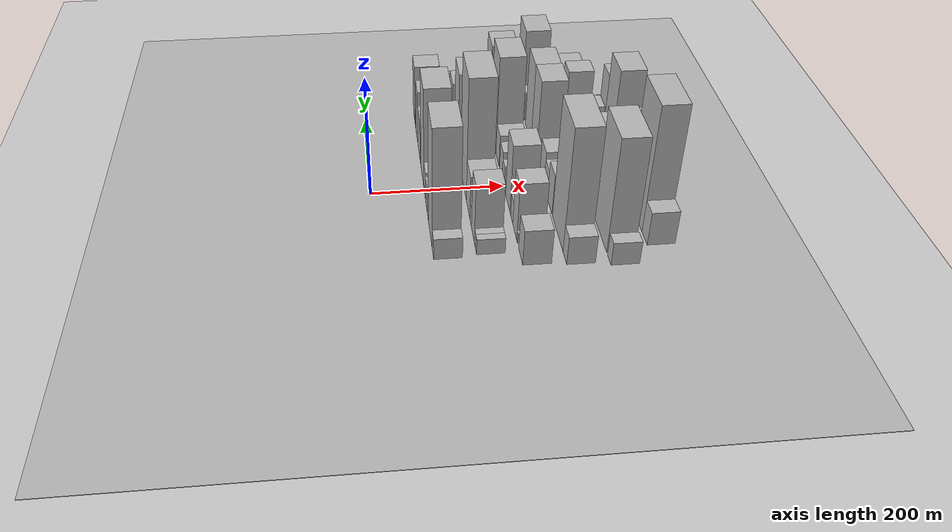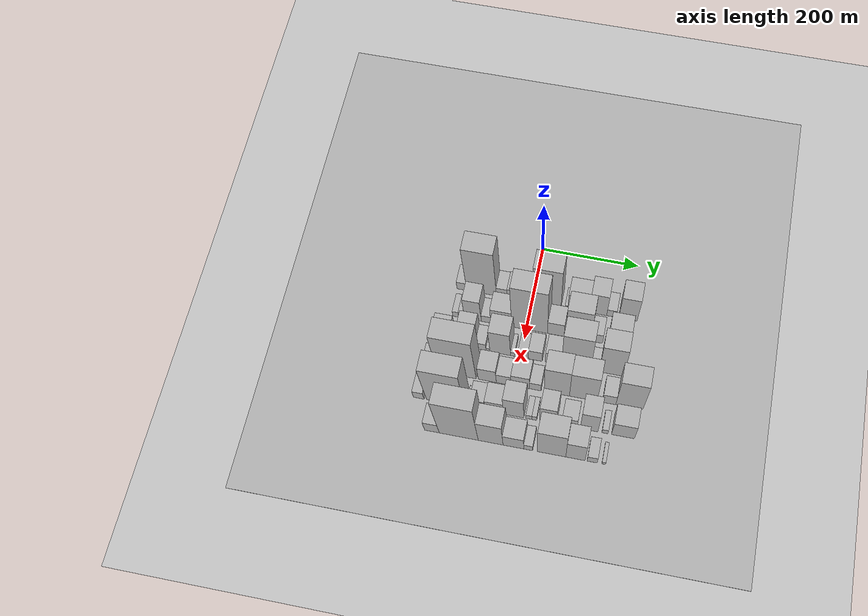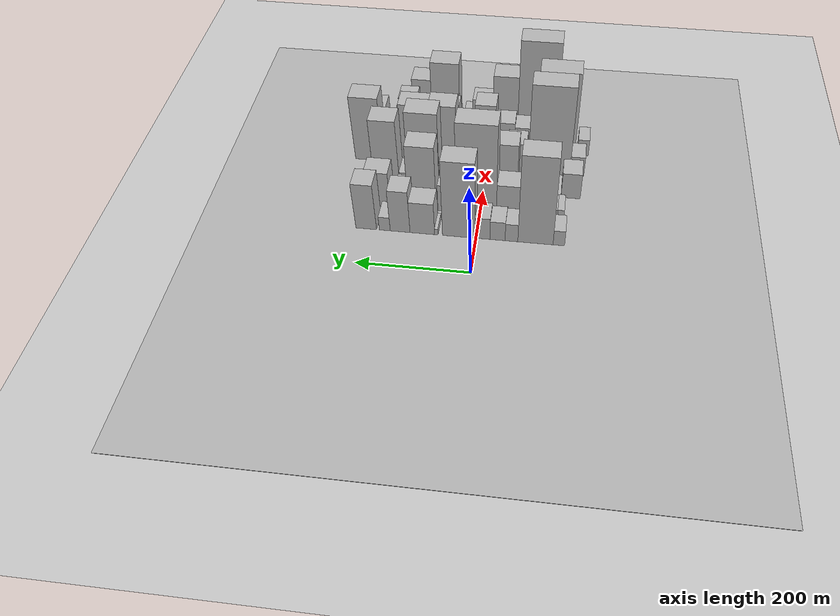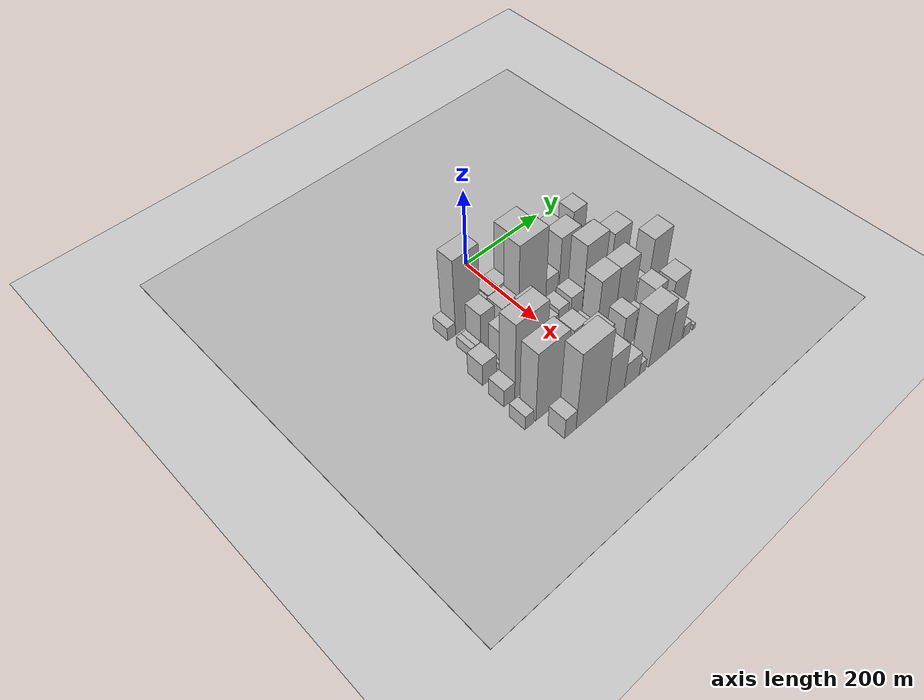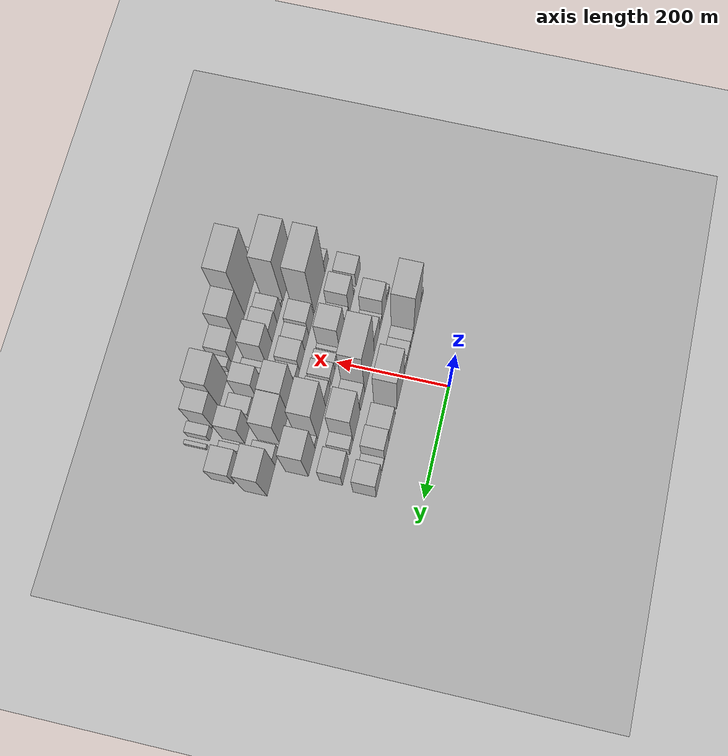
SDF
<sdf version="1.6">
 <world name="default">
  <include><name>ground_plane_1</name><uri>model://HANNAS_ground_plane</uri></include>
  <include>
   <name>ground_plane_2</name>
   <uri>model://HANNAS_ground_plane</uri>
   <pose>100 0 0  0 0 0</pose>
  </include>
  <model name="building_23">
   <static>1</static>
   <pose>100.0000 -146.3929 0 0.000000 0.000000 0.000000</pose>
   <link name="link">
    <pose>0 0 18.00 0 0 0</pose>
    <collision name="collision"><geometry><box><size>40.0000 20.2436 36.0000</size></box></geometry></collision>
    <visual name="visual">
     <cast_shadows>0</cast_shadows>
     <geometry><box><size>40.0000 20.2436 36.0000</size></box></geometry>
     <material>
      <script>
       <uri>model://HANNAS_wall/materials/scripts</uri>
       <uri>model://HANNAS_wall/materials/textures</uri>
       <name>vrc/HANNAS_wall</name>
      </script>
     </material>
    </visual>
   </link>
  </model>
  <model name="building_24">
   <static>1</static>
   <pose>100.0000 -105.3213 0 0.000000 0.000000 0.000000</pose>
   <link name="link">
    <pose>0 0 102.00 0 0 0</pose>
    <collision name="collision"><geometry><box><size>40.0000 61.8996 204.0000</size></box></geometry></collision>
    <visual name="visual">
     <cast_shadows>0</cast_shadows>
     <geometry><box><size>40.0000 61.8996 204.0000</size></box></geometry>
     <material>
      <script>
       <uri>model://HANNAS_wall/materials/scripts</uri>
       <uri>model://HANNAS_wall/materials/textures</uri>
       <name>vrc/HANNAS_wall</name>
      </script>
     </material>
    </visual>
   </link>
  </model>
  <model name="building_25">
   <static>1</static>
   <pose>100.0000 -63.1519 0 0.000000 0.000000 0.000000</pose>
   <link name="link">
    <pose>0 0 21.00 0 0 0</pose>
    <collision name="collision"><geometry><box><size>40.0000 22.4393 42.0000</size></box></geometry></collision>
    <visual name="visual">
     <cast_shadows>0</cast_shadows>
     <geometry><box><size>40.0000 22.4393 42.0000</size></box></geometry>
     <material>
      <script>
       <uri>model://HANNAS_wall/materials/scripts</uri>
       <uri>model://HANNAS_wall/materials/textures</uri>
       <name>vrc/HANNAS_wall</name>
      </script>
     </material>
    </visual>
   </link>
  </model>
  <model name="building_26">
   <static>1</static>
   <pose>100.0000 -38.5677 0 0.000000 0.000000 0.000000</pose>
   <link name="link">
    <pose>0 0 22.50 0 0 0</pose>
    <collision name="collision"><geometry><box><size>40.0000 26.7291 45.0000</size></box></geometry></collision>
    <visual name="visual">
     <cast_shadows>0</cast_shadows>
     <geometry><box><size>40.0000 26.7291 45.0000</size></box></geometry>
     <material>
      <script>
       <uri>model://HANNAS_wall/materials/scripts</uri>
       <uri>model://HANNAS_wall/materials/textures</uri>
       <name>vrc/HANNAS_wall</name>
      </script>
     </material>
    </visual>
   </link>
  </model>
  <model name="building_27">
   <static>1</static>
   <pose>100.0000 -11.8745 0 0.000000 0.000000 0.000000</pose>
   <link name="link">
    <pose>0 0 25.50 0 0 0</pose>
    <collision name="collision"><geometry><box><size>40.0000 26.6573 51.0000</size></box></geometry></collision>
    <visual name="visual">
     <cast_shadows>0</cast_shadows>
     <geometry><box><size>40.0000 26.6573 51.0000</size></box></geometry>
     <material>
      <script>
       <uri>model://HANNAS_wall/materials/scripts</uri>
       <uri>model://HANNAS_wall/materials/textures</uri>
       <name>vrc/HANNAS_wall</name>
      </script>
     </material>
    </visual>
   </link>
  </model>
  <model name="building_28">
   <static>1</static>
   <pose>100.0000 30.4601 0 0.000000 0.000000 0.000000</pose>
   <link name="link">
    <pose>0 0 88.50 0 0 0</pose>
    <collision name="collision"><geometry><box><size>40.0000 58.0119 177.0000</size></box></geometry></collision>
    <visual name="visual">
     <cast_shadows>0</cast_shadows>
     <geometry><box><size>40.0000 58.0119 177.0000</size></box></geometry>
     <material>
      <script>
       <uri>model://HANNAS_wall/materials/scripts</uri>
       <uri>model://HANNAS_wall/materials/textures</uri>
       <name>vrc/HANNAS_wall</name>
      </script>
     </material>
    </visual>
   </link>
  </model>
  <model name="building_29">
   <static>1</static>
   <pose>100.0000 70.5219 0 0.000000 0.000000 0.000000</pose>
   <link name="link">
    <pose>0 0 7.50 0 0 0</pose>
    <collision name="collision"><geometry><box><size>40.0000 6.1116 15.0000</size></box></geometry></collision>
    <visual name="visual">
     <cast_shadows>0</cast_shadows>
     <geometry><box><size>40.0000 6.1116 15.0000</size></box></geometry>
     <material>
      <script>
       <uri>model://HANNAS_wall/materials/scripts</uri>
       <uri>model://HANNAS_wall/materials/textures</uri>
       <name>vrc/HANNAS_wall</name>
      </script>
     </material>
    </visual>
   </link>
  </model>
  <model name="building_30">
   <static>1</static>
   <pose>100.0000 95.6432 0 0.000000 0.000000 0.000000</pose>
   <link name="link">
    <pose>0 0 37.50 0 0 0</pose>
    <collision name="collision"><geometry><box><size>40.0000 44.1311 75.0000</size></box></geometry></collision>
    <visual name="visual">
     <cast_shadows>0</cast_shadows>
     <geometry><box><size>40.0000 44.1311 75.0000</size></box></geometry>
     <material>
      <script>
       <uri>model://HANNAS_wall/materials/scripts</uri>
       <uri>model://HANNAS_wall/materials/textures</uri>
       <name>vrc/HANNAS_wall</name>
      </script>
     </material>
    </visual>
   </link>
  </model>
  <model name="building_31">
   <static>1</static>
   <pose>100.0000 135.5213 0 0.000000 0.000000 0.000000</pose>
   <link name="link">
    <pose>0 0 49.50 0 0 0</pose>
    <collision name="collision"><geometry><box><size>40.0000 35.6252 99.0000</size></box></geometry></collision>
    <visual name="visual">
     <cast_shadows>0</cast_shadows>
     <geometry><box><size>40.0000 35.6252 99.0000</size></box></geometry>
     <material>
      <script>
       <uri>model://HANNAS_wall/materials/scripts</uri>
       <uri>model://HANNAS_wall/materials/textures</uri>
       <name>vrc/HANNAS_wall</name>
      </script>
     </material>
    </visual>
   </link>
  </model>
  <model name="building_32">
   <static>1</static>
   <pose>100.0000 163.1861 0 0.000000 0.000000 0.000000</pose>
   <link name="link">
    <pose>0 0 16.50 0 0 0</pose>
    <collision name="collision"><geometry><box><size>40.0000 19.7042 33.0000</size></box></geometry></collision>
    <visual name="visual">
     <cast_shadows>0</cast_shadows>
     <geometry><box><size>40.0000 19.7042 33.0000</size></box></geometry>
     <material>
      <script>
       <uri>model://HANNAS_wall/materials/scripts</uri>
       <uri>model://HANNAS_wall/materials/textures</uri>
       <name>vrc/HANNAS_wall</name>
      </script>
     </material>
    </visual>
   </link>
  </model>
  <model name="building_33">
   <static>1</static>
   <pose>100.0000 196.7859 0 0.000000 0.000000 0.000000</pose>
   <link name="link">
    <pose>0 0 54.00 0 0 0</pose>
    <collision name="collision"><geometry><box><size>40.0000 37.4955 108.0000</size></box></geometry></collision>
    <visual name="visual">
     <cast_shadows>0</cast_shadows>
     <geometry><box><size>40.0000 37.4955 108.0000</size></box></geometry>
     <material>
      <script>
       <uri>model://HANNAS_wall/materials/scripts</uri>
       <uri>model://HANNAS_wall/materials/textures</uri>
       <name>vrc/HANNAS_wall</name>
      </script>
     </material>
    </visual>
   </link>
  </model>
  <model name="building_84">
   <static>1</static>
   <pose>160.0000 -146.0745 0 0.000000 0.000000 0.000000</pose>
   <link name="link">
    <pose>0 0 13.50 0 0 0</pose>
    <collision name="collision"><geometry><box><size>40.0000 11.9867 27.0000</size></box></geometry></collision>
    <visual name="visual">
     <cast_shadows>0</cast_shadows>
     <geometry><box><size>40.0000 11.9867 27.0000</size></box></geometry>
     <material>
      <script>
       <uri>model://HANNAS_wall/materials/scripts</uri>
       <uri>model://HANNAS_wall/materials/textures</uri>
       <name>vrc/HANNAS_wall</name>
      </script>
     </material>
    </visual>
   </link>
  </model>
  <model name="building_85">
   <static>1</static>
   <pose>160.0000 -133.7867 0 0.000000 0.000000 0.000000</pose>
   <link name="link">
    <pose>0 0 13.50 0 0 0</pose>
    <collision name="collision"><geometry><box><size>40.0000 12.5890 27.0000</size></box></geometry></collision>
    <visual name="visual">
     <cast_shadows>0</cast_shadows>
     <geometry><box><size>40.0000 12.5890 27.0000</size></box></geometry>
     <material>
      <script>
       <uri>model://HANNAS_wall/materials/scripts</uri>
       <uri>model://HANNAS_wall/materials/textures</uri>
       <name>vrc/HANNAS_wall</name>
      </script>
     </material>
    </visual>
   </link>
  </model>
  <model name="building_86">
   <static>1</static>
   <pose>160.0000 -110.2321 0 0.000000 0.000000 0.000000</pose>
   <link name="link">
    <pose>0 0 51.00 0 0 0</pose>
    <collision name="collision"><geometry><box><size>40.0000 34.5200 102.0000</size></box></geometry></collision>
    <visual name="visual">
     <cast_shadows>0</cast_shadows>
     <geometry><box><size>40.0000 34.5200 102.0000</size></box></geometry>
     <material>
      <script>
       <uri>model://HANNAS_wall/materials/scripts</uri>
       <uri>model://HANNAS_wall/materials/textures</uri>
       <name>vrc/HANNAS_wall</name>
      </script>
     </material>
    </visual>
   </link>
  </model>
  <model name="building_87">
   <static>1</static>
   <pose>160.0000 -83.2135 0 0.000000 0.000000 0.000000</pose>
   <link name="link">
    <pose>0 0 16.50 0 0 0</pose>
    <collision name="collision"><geometry><box><size>40.0000 19.5172 33.0000</size></box></geometry></collision>
    <visual name="visual">
     <cast_shadows>0</cast_shadows>
     <geometry><box><size>40.0000 19.5172 33.0000</size></box></geometry>
     <material>
      <script>
       <uri>model://HANNAS_wall/materials/scripts</uri>
       <uri>model://HANNAS_wall/materials/textures</uri>
       <name>vrc/HANNAS_wall</name>
      </script>
     </material>
    </visual>
   </link>
  </model>
  <model name="building_88">
   <static>1</static>
   <pose>160.0000 -51.9760 0 0.000000 0.000000 0.000000</pose>
   <link name="link">
    <pose>0 0 37.50 0 0 0</pose>
    <collision name="collision"><geometry><box><size>40.0000 42.9578 75.0000</size></box></geometry></collision>
    <visual name="visual">
     <cast_shadows>0</cast_shadows>
     <geometry><box><size>40.0000 42.9578 75.0000</size></box></geometry>
     <material>
      <script>
       <uri>model://HANNAS_wall/materials/scripts</uri>
       <uri>model://HANNAS_wall/materials/textures</uri>
       <name>vrc/HANNAS_wall</name>
      </script>
     </material>
    </visual>
   </link>
  </model>
  <model name="building_89">
   <static>1</static>
   <pose>160.0000 6.0906 0 0.000000 0.000000 0.000000</pose>
   <link name="link">
    <pose>0 0 105.00 0 0 0</pose>
    <collision name="collision"><geometry><box><size>40.0000 73.1754 210.0000</size></box></geometry></collision>
    <visual name="visual">
     <cast_shadows>0</cast_shadows>
     <geometry><box><size>40.0000 73.1754 210.0000</size></box></geometry>
     <material>
      <script>
       <uri>model://HANNAS_wall/materials/scripts</uri>
       <uri>model://HANNAS_wall/materials/textures</uri>
       <name>vrc/HANNAS_wall</name>
      </script>
     </material>
    </visual>
   </link>
  </model>
  <model name="building_90">
   <static>1</static>
   <pose>160.0000 59.5965 0 0.000000 0.000000 0.000000</pose>
   <link name="link">
    <pose>0 0 31.50 0 0 0</pose>
    <collision name="collision"><geometry><box><size>40.0000 33.8365 63.0000</size></box></geometry></collision>
    <visual name="visual">
     <cast_shadows>0</cast_shadows>
     <geometry><box><size>40.0000 33.8365 63.0000</size></box></geometry>
     <material>
      <script>
       <uri>model://HANNAS_wall/materials/scripts</uri>
       <uri>model://HANNAS_wall/materials/textures</uri>
       <name>vrc/HANNAS_wall</name>
      </script>
     </material>
    </visual>
   </link>
  </model>
  <model name="building_91">
   <static>1</static>
   <pose>160.0000 105.3599 0 0.000000 0.000000 0.000000</pose>
   <link name="link">
    <pose>0 0 75.00 0 0 0</pose>
    <collision name="collision"><geometry><box><size>40.0000 51.6903 150.0000</size></box></geometry></collision>
    <visual name="visual">
     <cast_shadows>0</cast_shadows>
     <geometry><box><size>40.0000 51.6903 150.0000</size></box></geometry>
     <material>
      <script>
       <uri>model://HANNAS_wall/materials/scripts</uri>
       <uri>model://HANNAS_wall/materials/textures</uri>
       <name>vrc/HANNAS_wall</name>
      </script>
     </material>
    </visual>
   </link>
  </model>
  <model name="building_92">
   <static>1</static>
   <pose>160.0000 142.9962 0 0.000000 0.000000 0.000000</pose>
   <link name="link">
    <pose>0 0 22.50 0 0 0</pose>
    <collision name="collision"><geometry><box><size>40.0000 23.5823 45.0000</size></box></geometry></collision>
    <visual name="visual">
     <cast_shadows>0</cast_shadows>
     <geometry><box><size>40.0000 23.5823 45.0000</size></box></geometry>
     <material>
      <script>
       <uri>model://HANNAS_wall/materials/scripts</uri>
       <uri>model://HANNAS_wall/materials/textures</uri>
       <name>vrc/HANNAS_wall</name>
      </script>
     </material>
    </visual>
   </link>
  </model>
  <model name="building_93">
   <static>1</static>
   <pose>160.0000 186.6485 0 0.000000 0.000000 0.000000</pose>
   <link name="link">
    <pose>0 0 40.50 0 0 0</pose>
    <collision name="collision"><geometry><box><size>40.0000 43.7223 81.0000</size></box></geometry></collision>
    <visual name="visual">
     <cast_shadows>0</cast_shadows>
     <geometry><box><size>40.0000 43.7223 81.0000</size></box></geometry>
     <material>
      <script>
       <uri>model://HANNAS_wall/materials/scripts</uri>
       <uri>model://HANNAS_wall/materials/textures</uri>
       <name>vrc/HANNAS_wall</name>
      </script>
     </material>
    </visual>
   </link>
  </model>
  <model name="building_137">
   <static>1</static>
   <pose>220.0000 -161.7217 0 0.000000 0.000000 0.000000</pose>
   <link name="link">
    <pose>0 0 30.00 0 0 0</pose>
    <collision name="collision"><geometry><box><size>40.0000 35.3043 60.0000</size></box></geometry></collision>
    <visual name="visual">
     <cast_shadows>0</cast_shadows>
     <geometry><box><size>40.0000 35.3043 60.0000</size></box></geometry>
     <material>
      <script>
       <uri>model://HANNAS_wall/materials/scripts</uri>
       <uri>model://HANNAS_wall/materials/textures</uri>
       <name>vrc/HANNAS_wall</name>
      </script>
     </material>
    </visual>
   </link>
  </model>
  <model name="building_138">
   <static>1</static>
   <pose>220.0000 -130.4508 0 0.000000 0.000000 0.000000</pose>
   <link name="link">
    <pose>0 0 9.00 0 0 0</pose>
    <collision name="collision"><geometry><box><size>40.0000 7.2374 18.0000</size></box></geometry></collision>
    <visual name="visual">
     <cast_shadows>0</cast_shadows>
     <geometry><box><size>40.0000 7.2374 18.0000</size></box></geometry>
     <material>
      <script>
       <uri>model://HANNAS_wall/materials/scripts</uri>
       <uri>model://HANNAS_wall/materials/textures</uri>
       <name>vrc/HANNAS_wall</name>
      </script>
     </material>
    </visual>
   </link>
  </model>
  <model name="building_139">
   <static>1</static>
   <pose>220.0000 -109.0703 0 0.000000 0.000000 0.000000</pose>
   <link name="link">
    <pose>0 0 49.50 0 0 0</pose>
    <collision name="collision"><geometry><box><size>40.0000 35.5235 99.0000</size></box></geometry></collision>
    <visual name="visual">
     <cast_shadows>0</cast_shadows>
     <geometry><box><size>40.0000 35.5235 99.0000</size></box></geometry>
     <material>
      <script>
       <uri>model://HANNAS_wall/materials/scripts</uri>
       <uri>model://HANNAS_wall/materials/textures</uri>
       <name>vrc/HANNAS_wall</name>
      </script>
     </material>
    </visual>
   </link>
  </model>
  <model name="building_140">
   <static>1</static>
   <pose>220.0000 -80.9176 0 0.000000 0.000000 0.000000</pose>
   <link name="link">
    <pose>0 0 19.50 0 0 0</pose>
    <collision name="collision"><geometry><box><size>40.0000 20.7820 39.0000</size></box></geometry></collision>
    <visual name="visual">
     <cast_shadows>0</cast_shadows>
     <geometry><box><size>40.0000 20.7820 39.0000</size></box></geometry>
     <material>
      <script>
       <uri>model://HANNAS_wall/materials/scripts</uri>
       <uri>model://HANNAS_wall/materials/textures</uri>
       <name>vrc/HANNAS_wall</name>
      </script>
     </material>
    </visual>
   </link>
  </model>
  <model name="building_141">
   <static>1</static>
   <pose>220.0000 -66.6765 0 0.000000 0.000000 0.000000</pose>
   <link name="link">
    <pose>0 0 9.00 0 0 0</pose>
    <collision name="collision"><geometry><box><size>40.0000 7.7002 18.0000</size></box></geometry></collision>
    <visual name="visual">
     <cast_shadows>0</cast_shadows>
     <geometry><box><size>40.0000 7.7002 18.0000</size></box></geometry>
     <material>
      <script>
       <uri>model://HANNAS_wall/materials/scripts</uri>
       <uri>model://HANNAS_wall/materials/textures</uri>
       <name>vrc/HANNAS_wall</name>
      </script>
     </material>
    </visual>
   </link>
  </model>
  <model name="building_142">
   <static>1</static>
   <pose>220.0000 -41.8266 0 0.000000 0.000000 0.000000</pose>
   <link name="link">
    <pose>0 0 58.50 0 0 0</pose>
    <collision name="collision"><geometry><box><size>40.0000 41.9995 117.0000</size></box></geometry></collision>
    <visual name="visual">
     <cast_shadows>0</cast_shadows>
     <geometry><box><size>40.0000 41.9995 117.0000</size></box></geometry>
     <material>
      <script>
       <uri>model://HANNAS_wall/materials/scripts</uri>
       <uri>model://HANNAS_wall/materials/textures</uri>
       <name>vrc/HANNAS_wall</name>
      </script>
     </material>
    </visual>
   </link>
  </model>
  <model name="building_143">
   <static>1</static>
   <pose>220.0000 -16.6057 0 0.000000 0.000000 0.000000</pose>
   <link name="link">
    <pose>0 0 10.50 0 0 0</pose>
    <collision name="collision"><geometry><box><size>40.0000 8.4424 21.0000</size></box></geometry></collision>
    <visual name="visual">
     <cast_shadows>0</cast_shadows>
     <geometry><box><size>40.0000 8.4424 21.0000</size></box></geometry>
     <material>
      <script>
       <uri>model://HANNAS_wall/materials/scripts</uri>
       <uri>model://HANNAS_wall/materials/textures</uri>
       <name>vrc/HANNAS_wall</name>
      </script>
     </material>
    </visual>
   </link>
  </model>
  <model name="building_144">
   <static>1</static>
   <pose>220.0000 5.0053 0 0.000000 0.000000 0.000000</pose>
   <link name="link">
    <pose>0 0 19.50 0 0 0</pose>
    <collision name="collision"><geometry><box><size>40.0000 20.7794 39.0000</size></box></geometry></collision>
    <visual name="visual">
     <cast_shadows>0</cast_shadows>
     <geometry><box><size>40.0000 20.7794 39.0000</size></box></geometry>
     <material>
      <script>
       <uri>model://HANNAS_wall/materials/scripts</uri>
       <uri>model://HANNAS_wall/materials/textures</uri>
       <name>vrc/HANNAS_wall</name>
      </script>
     </material>
    </visual>
   </link>
  </model>
  <model name="building_145">
   <static>1</static>
   <pose>220.0000 29.4233 0 0.000000 0.000000 0.000000</pose>
   <link name="link">
    <pose>0 0 25.50 0 0 0</pose>
    <collision name="collision"><geometry><box><size>40.0000 28.0566 51.0000</size></box></geometry></collision>
    <visual name="visual">
     <cast_shadows>0</cast_shadows>
     <geometry><box><size>40.0000 28.0566 51.0000</size></box></geometry>
     <material>
      <script>
       <uri>model://HANNAS_wall/materials/scripts</uri>
       <uri>model://HANNAS_wall/materials/textures</uri>
       <name>vrc/HANNAS_wall</name>
      </script>
     </material>
    </visual>
   </link>
  </model>
  <model name="building_146">
   <static>1</static>
   <pose>220.0000 65.8892 0 0.000000 0.000000 0.000000</pose>
   <link name="link">
    <pose>0 0 28.50 0 0 0</pose>
    <collision name="collision"><geometry><box><size>40.0000 32.8753 57.0000</size></box></geometry></collision>
    <visual name="visual">
     <cast_shadows>0</cast_shadows>
     <geometry><box><size>40.0000 32.8753 57.0000</size></box></geometry>
     <material>
      <script>
       <uri>model://HANNAS_wall/materials/scripts</uri>
       <uri>model://HANNAS_wall/materials/textures</uri>
       <name>vrc/HANNAS_wall</name>
      </script>
     </material>
    </visual>
   </link>
  </model>
  <model name="building_147">
   <static>1</static>
   <pose>220.0000 111.6939 0 0.000000 0.000000 0.000000</pose>
   <link name="link">
    <pose>0 0 87.00 0 0 0</pose>
    <collision name="collision"><geometry><box><size>40.0000 58.7341 174.0000</size></box></geometry></collision>
    <visual name="visual">
     <cast_shadows>0</cast_shadows>
     <geometry><box><size>40.0000 58.7341 174.0000</size></box></geometry>
     <material>
      <script>
       <uri>model://HANNAS_wall/materials/scripts</uri>
       <uri>model://HANNAS_wall/materials/textures</uri>
       <name>vrc/HANNAS_wall</name>
      </script>
     </material>
    </visual>
   </link>
  </model>
  <model name="building_148">
   <static>1</static>
   <pose>220.0000 149.5195 0 0.000000 0.000000 0.000000</pose>
   <link name="link">
    <pose>0 0 15.00 0 0 0</pose>
    <collision name="collision"><geometry><box><size>40.0000 16.9172 30.0000</size></box></geometry></collision>
    <visual name="visual">
     <cast_shadows>0</cast_shadows>
     <geometry><box><size>40.0000 16.9172 30.0000</size></box></geometry>
     <material>
      <script>
       <uri>model://HANNAS_wall/materials/scripts</uri>
       <uri>model://HANNAS_wall/materials/textures</uri>
       <name>vrc/HANNAS_wall</name>
      </script>
     </material>
    </visual>
   </link>
  </model>
  <model name="building_149">
   <static>1</static>
   <pose>220.0000 182.3104 0 0.000000 0.000000 0.000000</pose>
   <link name="link">
    <pose>0 0 75.00 0 0 0</pose>
    <collision name="collision"><geometry><box><size>40.0000 48.6646 150.0000</size></box></geometry></collision>
    <visual name="visual">
     <cast_shadows>0</cast_shadows>
     <geometry><box><size>40.0000 48.6646 150.0000</size></box></geometry>
     <material>
      <script>
       <uri>model://HANNAS_wall/materials/scripts</uri>
       <uri>model://HANNAS_wall/materials/textures</uri>
       <name>vrc/HANNAS_wall</name>
      </script>
     </material>
    </visual>
   </link>
  </model>
  <model name="building_190">
   <static>1</static>
   <pose>280.0000 -170.5250 0 0.000000 0.000000 0.000000</pose>
   <link name="link">
    <pose>0 0 24.00 0 0 0</pose>
    <collision name="collision"><geometry><box><size>40.0000 26.6444 48.0000</size></box></geometry></collision>
    <visual name="visual">
     <cast_shadows>0</cast_shadows>
     <geometry><box><size>40.0000 26.6444 48.0000</size></box></geometry>
     <material>
      <script>
       <uri>model://HANNAS_wall/materials/scripts</uri>
       <uri>model://HANNAS_wall/materials/textures</uri>
       <name>vrc/HANNAS_wall</name>
      </script>
     </material>
    </visual>
   </link>
  </model>
  <model name="building_191">
   <static>1</static>
   <pose>280.0000 -117.5712 0 0.000000 0.000000 0.000000</pose>
   <link name="link">
    <pose>0 0 103.50 0 0 0</pose>
    <collision name="collision"><geometry><box><size>40.0000 79.2631 207.0000</size></box></geometry></collision>
    <visual name="visual">
     <cast_shadows>0</cast_shadows>
     <geometry><box><size>40.0000 79.2631 207.0000</size></box></geometry>
     <material>
      <script>
       <uri>model://HANNAS_wall/materials/scripts</uri>
       <uri>model://HANNAS_wall/materials/textures</uri>
       <name>vrc/HANNAS_wall</name>
      </script>
     </material>
    </visual>
   </link>
  </model>
  <model name="building_192">
   <static>1</static>
   <pose>280.0000 -55.6161 0 0.000000 0.000000 0.000000</pose>
   <link name="link">
    <pose>0 0 34.50 0 0 0</pose>
    <collision name="collision"><geometry><box><size>40.0000 36.6471 69.0000</size></box></geometry></collision>
    <visual name="visual">
     <cast_shadows>0</cast_shadows>
     <geometry><box><size>40.0000 36.6471 69.0000</size></box></geometry>
     <material>
      <script>
       <uri>model://HANNAS_wall/materials/scripts</uri>
       <uri>model://HANNAS_wall/materials/textures</uri>
       <name>vrc/HANNAS_wall</name>
      </script>
     </material>
    </visual>
   </link>
  </model>
  <model name="building_193">
   <static>1</static>
   <pose>280.0000 -22.4478 0 0.000000 0.000000 0.000000</pose>
   <link name="link">
    <pose>0 0 25.50 0 0 0</pose>
    <collision name="collision"><geometry><box><size>40.0000 29.6895 51.0000</size></box></geometry></collision>
    <visual name="visual">
     <cast_shadows>0</cast_shadows>
     <geometry><box><size>40.0000 29.6895 51.0000</size></box></geometry>
     <material>
      <script>
       <uri>model://HANNAS_wall/materials/scripts</uri>
       <uri>model://HANNAS_wall/materials/textures</uri>
       <name>vrc/HANNAS_wall</name>
      </script>
     </material>
    </visual>
   </link>
  </model>
  <model name="building_194">
   <static>1</static>
   <pose>280.0000 10.8552 0 0.000000 0.000000 0.000000</pose>
   <link name="link">
    <pose>0 0 31.50 0 0 0</pose>
    <collision name="collision"><geometry><box><size>40.0000 36.9166 63.0000</size></box></geometry></collision>
    <visual name="visual">
     <cast_shadows>0</cast_shadows>
     <geometry><box><size>40.0000 36.9166 63.0000</size></box></geometry>
     <material>
      <script>
       <uri>model://HANNAS_wall/materials/scripts</uri>
       <uri>model://HANNAS_wall/materials/textures</uri>
       <name>vrc/HANNAS_wall</name>
      </script>
     </material>
    </visual>
   </link>
  </model>
  <model name="building_195">
   <static>1</static>
   <pose>280.0000 40.9045 0 0.000000 0.000000 0.000000</pose>
   <link name="link">
    <pose>0 0 19.50 0 0 0</pose>
    <collision name="collision"><geometry><box><size>40.0000 23.1820 39.0000</size></box></geometry></collision>
    <visual name="visual">
     <cast_shadows>0</cast_shadows>
     <geometry><box><size>40.0000 23.1820 39.0000</size></box></geometry>
     <material>
      <script>
       <uri>model://HANNAS_wall/materials/scripts</uri>
       <uri>model://HANNAS_wall/materials/textures</uri>
       <name>vrc/HANNAS_wall</name>
      </script>
     </material>
    </visual>
   </link>
  </model>
  <model name="building_196">
   <static>1</static>
   <pose>280.0000 83.7066 0 0.000000 0.000000 0.000000</pose>
   <link name="link">
    <pose>0 0 72.00 0 0 0</pose>
    <collision name="collision"><geometry><box><size>40.0000 50.4221 144.0000</size></box></geometry></collision>
    <visual name="visual">
     <cast_shadows>0</cast_shadows>
     <geometry><box><size>40.0000 50.4221 144.0000</size></box></geometry>
     <material>
      <script>
       <uri>model://HANNAS_wall/materials/scripts</uri>
       <uri>model://HANNAS_wall/materials/textures</uri>
       <name>vrc/HANNAS_wall</name>
      </script>
     </material>
    </visual>
   </link>
  </model>
  <model name="building_197">
   <static>1</static>
   <pose>280.0000 136.5973 0 0.000000 0.000000 0.000000</pose>
   <link name="link">
    <pose>0 0 70.50 0 0 0</pose>
    <collision name="collision"><geometry><box><size>40.0000 55.3592 141.0000</size></box></geometry></collision>
    <visual name="visual">
     <cast_shadows>0</cast_shadows>
     <geometry><box><size>40.0000 55.3592 141.0000</size></box></geometry>
     <material>
      <script>
       <uri>model://HANNAS_wall/materials/scripts</uri>
       <uri>model://HANNAS_wall/materials/textures</uri>
       <name>vrc/HANNAS_wall</name>
      </script>
     </material>
    </visual>
   </link>
  </model>
  <model name="building_198">
   <static>1</static>
   <pose>280.0000 187.6390 0 0.000000 0.000000 0.000000</pose>
   <link name="link">
    <pose>0 0 25.50 0 0 0</pose>
    <collision name="collision"><geometry><box><size>40.0000 26.7242 51.0000</size></box></geometry></collision>
    <visual name="visual">
     <cast_shadows>0</cast_shadows>
     <geometry><box><size>40.0000 26.7242 51.0000</size></box></geometry>
     <material>
      <script>
       <uri>model://HANNAS_wall/materials/scripts</uri>
       <uri>model://HANNAS_wall/materials/textures</uri>
       <name>vrc/HANNAS_wall</name>
      </script>
     </material>
    </visual>
   </link>
  </model>
  <model name="building_199">
   <static>1</static>
   <pose>280.0000 227.8166 0 0.000000 0.000000 0.000000</pose>
   <link name="link">
    <pose>0 0 75.00 0 0 0</pose>
    <collision name="collision"><geometry><box><size>40.0000 53.6311 150.0000</size></box></geometry></collision>
    <visual name="visual">
     <cast_shadows>0</cast_shadows>
     <geometry><box><size>40.0000 53.6311 150.0000</size></box></geometry>
     <material>
      <script>
       <uri>model://HANNAS_wall/materials/scripts</uri>
       <uri>model://HANNAS_wall/materials/textures</uri>
       <name>vrc/HANNAS_wall</name>
      </script>
     </material>
    </visual>
   </link>
  </model>
  <model name="building_244">
   <static>1</static>
   <pose>340.0000 -180.0895 0 0.000000 0.000000 0.000000</pose>
   <link name="link">
    <pose>0 0 19.50 0 0 0</pose>
    <collision name="collision"><geometry><box><size>40.0000 21.2716 39.0000</size></box></geometry></collision>
    <visual name="visual">
     <cast_shadows>0</cast_shadows>
     <geometry><box><size>40.0000 21.2716 39.0000</size></box></geometry>
     <material>
      <script>
       <uri>model://HANNAS_wall/materials/scripts</uri>
       <uri>model://HANNAS_wall/materials/textures</uri>
       <name>vrc/HANNAS_wall</name>
      </script>
     </material>
    </visual>
   </link>
  </model>
  <model name="building_245">
   <static>1</static>
   <pose>340.0000 -126.5657 0 0.000000 0.000000 0.000000</pose>
   <link name="link">
    <pose>0 0 96.00 0 0 0</pose>
    <collision name="collision"><geometry><box><size>40.0000 75.7761 192.0000</size></box></geometry></collision>
    <visual name="visual">
     <cast_shadows>0</cast_shadows>
     <geometry><box><size>40.0000 75.7761 192.0000</size></box></geometry>
     <material>
      <script>
       <uri>model://HANNAS_wall/materials/scripts</uri>
       <uri>model://HANNAS_wall/materials/textures</uri>
       <name>vrc/HANNAS_wall</name>
      </script>
     </material>
    </visual>
   </link>
  </model>
  <model name="building_246">
   <static>1</static>
   <pose>340.0000 -80.3082 0 0.000000 0.000000 0.000000</pose>
   <link name="link">
    <pose>0 0 9.00 0 0 0</pose>
    <collision name="collision"><geometry><box><size>40.0000 8.7388 18.0000</size></box></geometry></collision>
    <visual name="visual">
     <cast_shadows>0</cast_shadows>
     <geometry><box><size>40.0000 8.7388 18.0000</size></box></geometry>
     <material>
      <script>
       <uri>model://HANNAS_wall/materials/scripts</uri>
       <uri>model://HANNAS_wall/materials/textures</uri>
       <name>vrc/HANNAS_wall</name>
      </script>
     </material>
    </visual>
   </link>
  </model>
  <model name="building_247">
   <static>1</static>
   <pose>340.0000 -61.4787 0 0.000000 0.000000 0.000000</pose>
   <link name="link">
    <pose>0 0 28.50 0 0 0</pose>
    <collision name="collision"><geometry><box><size>40.0000 28.9202 57.0000</size></box></geometry></collision>
    <visual name="visual">
     <cast_shadows>0</cast_shadows>
     <geometry><box><size>40.0000 28.9202 57.0000</size></box></geometry>
     <material>
      <script>
       <uri>model://HANNAS_wall/materials/scripts</uri>
       <uri>model://HANNAS_wall/materials/textures</uri>
       <name>vrc/HANNAS_wall</name>
      </script>
     </material>
    </visual>
   </link>
  </model>
  <model name="building_248">
   <static>1</static>
   <pose>340.0000 -28.7812 0 0.000000 0.000000 0.000000</pose>
   <link name="link">
    <pose>0 0 33.00 0 0 0</pose>
    <collision name="collision"><geometry><box><size>40.0000 36.4749 66.0000</size></box></geometry></collision>
    <visual name="visual">
     <cast_shadows>0</cast_shadows>
     <geometry><box><size>40.0000 36.4749 66.0000</size></box></geometry>
     <material>
      <script>
       <uri>model://HANNAS_wall/materials/scripts</uri>
       <uri>model://HANNAS_wall/materials/textures</uri>
       <name>vrc/HANNAS_wall</name>
      </script>
     </material>
    </visual>
   </link>
  </model>
  <model name="building_249">
   <static>1</static>
   <pose>340.0000 9.5560 0 0.000000 0.000000 0.000000</pose>
   <link name="link">
    <pose>0 0 52.50 0 0 0</pose>
    <collision name="collision"><geometry><box><size>40.0000 40.1995 105.0000</size></box></geometry></collision>
    <visual name="visual">
     <cast_shadows>0</cast_shadows>
     <geometry><box><size>40.0000 40.1995 105.0000</size></box></geometry>
     <material>
      <script>
       <uri>model://HANNAS_wall/materials/scripts</uri>
       <uri>model://HANNAS_wall/materials/textures</uri>
       <name>vrc/HANNAS_wall</name>
      </script>
     </material>
    </visual>
   </link>
  </model>
  <model name="building_250">
   <static>1</static>
   <pose>340.0000 39.5356 0 0.000000 0.000000 0.000000</pose>
   <link name="link">
    <pose>0 0 12.00 0 0 0</pose>
    <collision name="collision"><geometry><box><size>40.0000 11.7598 24.0000</size></box></geometry></collision>
    <visual name="visual">
     <cast_shadows>0</cast_shadows>
     <geometry><box><size>40.0000 11.7598 24.0000</size></box></geometry>
     <material>
      <script>
       <uri>model://HANNAS_wall/materials/scripts</uri>
       <uri>model://HANNAS_wall/materials/textures</uri>
       <name>vrc/HANNAS_wall</name>
      </script>
     </material>
    </visual>
   </link>
  </model>
  <model name="building_251">
   <static>1</static>
   <pose>340.0000 50.2919 0 0.000000 0.000000 0.000000</pose>
   <link name="link">
    <pose>0 0 12.00 0 0 0</pose>
    <collision name="collision"><geometry><box><size>40.0000 9.7528 24.0000</size></box></geometry></collision>
    <visual name="visual">
     <cast_shadows>0</cast_shadows>
     <geometry><box><size>40.0000 9.7528 24.0000</size></box></geometry>
     <material>
      <script>
       <uri>model://HANNAS_wall/materials/scripts</uri>
       <uri>model://HANNAS_wall/materials/textures</uri>
       <name>vrc/HANNAS_wall</name>
      </script>
     </material>
    </visual>
   </link>
  </model>
  <model name="building_252">
   <static>1</static>
   <pose>340.0000 77.7255 0 0.000000 0.000000 0.000000</pose>
   <link name="link">
    <pose>0 0 46.50 0 0 0</pose>
    <collision name="collision"><geometry><box><size>40.0000 33.1143 93.0000</size></box></geometry></collision>
    <visual name="visual">
     <cast_shadows>0</cast_shadows>
     <geometry><box><size>40.0000 33.1143 93.0000</size></box></geometry>
     <material>
      <script>
       <uri>model://HANNAS_wall/materials/scripts</uri>
       <uri>model://HANNAS_wall/materials/textures</uri>
       <name>vrc/HANNAS_wall</name>
      </script>
     </material>
    </visual>
   </link>
  </model>
  <model name="building_253">
   <static>1</static>
   <pose>340.0000 119.5539 0 0.000000 0.000000 0.000000</pose>
   <link name="link">
    <pose>0 0 25.50 0 0 0</pose>
    <collision name="collision"><geometry><box><size>40.0000 30.5425 51.0000</size></box></geometry></collision>
    <visual name="visual">
     <cast_shadows>0</cast_shadows>
     <geometry><box><size>40.0000 30.5425 51.0000</size></box></geometry>
     <material>
      <script>
       <uri>model://HANNAS_wall/materials/scripts</uri>
       <uri>model://HANNAS_wall/materials/textures</uri>
       <name>vrc/HANNAS_wall</name>
      </script>
     </material>
    </visual>
   </link>
  </model>
  <model name="building_254">
   <static>1</static>
   <pose>340.0000 158.1627 0 0.000000 0.000000 0.000000</pose>
   <link name="link">
    <pose>0 0 54.00 0 0 0</pose>
    <collision name="collision"><geometry><box><size>40.0000 34.6752 108.0000</size></box></geometry></collision>
    <visual name="visual">
     <cast_shadows>0</cast_shadows>
     <geometry><box><size>40.0000 34.6752 108.0000</size></box></geometry>
     <material>
      <script>
       <uri>model://HANNAS_wall/materials/scripts</uri>
       <uri>model://HANNAS_wall/materials/textures</uri>
       <name>vrc/HANNAS_wall</name>
      </script>
     </material>
    </visual>
   </link>
  </model>
  <model name="building_255">
   <static>1</static>
   <pose>340.0000 189.4718 0 0.000000 0.000000 0.000000</pose>
   <link name="link">
    <pose>0 0 12.00 0 0 0</pose>
    <collision name="collision"><geometry><box><size>40.0000 11.9429 24.0000</size></box></geometry></collision>
    <visual name="visual">
     <cast_shadows>0</cast_shadows>
     <geometry><box><size>40.0000 11.9429 24.0000</size></box></geometry>
     <material>
      <script>
       <uri>model://HANNAS_wall/materials/scripts</uri>
       <uri>model://HANNAS_wall/materials/textures</uri>
       <name>vrc/HANNAS_wall</name>
      </script>
     </material>
    </visual>
   </link>
  </model>
  <model name="building_256">
   <static>1</static>
   <pose>340.0000 224.7362 0 0.000000 0.000000 0.000000</pose>
   <link name="link">
    <pose>0 0 40.50 0 0 0</pose>
    <collision name="collision"><geometry><box><size>40.0000 44.5860 81.0000</size></box></geometry></collision>
    <visual name="visual">
     <cast_shadows>0</cast_shadows>
     <geometry><box><size>40.0000 44.5860 81.0000</size></box></geometry>
     <material>
      <script>
       <uri>model://HANNAS_wall/materials/scripts</uri>
       <uri>model://HANNAS_wall/materials/textures</uri>
       <name>vrc/HANNAS_wall</name>
      </script>
     </material>
    </visual>
   </link>
  </model>
  <model name="building_300">
   <static>1</static>
   <pose>400.0000 -139.6956 0 0.000000 0.000000 0.000000</pose>
   <link name="link">
    <pose>0 0 28.50 0 0 0</pose>
    <collision name="collision"><geometry><box><size>40.0000 28.7710 57.0000</size></box></geometry></collision>
    <visual name="visual">
     <cast_shadows>0</cast_shadows>
     <geometry><box><size>40.0000 28.7710 57.0000</size></box></geometry>
     <material>
      <script>
       <uri>model://HANNAS_wall/materials/scripts</uri>
       <uri>model://HANNAS_wall/materials/textures</uri>
       <name>vrc/HANNAS_wall</name>
      </script>
     </material>
    </visual>
   </link>
  </model>
  <model name="building_301">
   <static>1</static>
   <pose>400.0000 -86.7774 0 0.000000 0.000000 0.000000</pose>
   <link name="link">
    <pose>0 0 106.50 0 0 0</pose>
    <collision name="collision"><geometry><box><size>40.0000 77.0654 213.0000</size></box></geometry></collision>
    <visual name="visual">
     <cast_shadows>0</cast_shadows>
     <geometry><box><size>40.0000 77.0654 213.0000</size></box></geometry>
     <material>
      <script>
       <uri>model://HANNAS_wall/materials/scripts</uri>
       <uri>model://HANNAS_wall/materials/textures</uri>
       <name>vrc/HANNAS_wall</name>
      </script>
     </material>
    </visual>
   </link>
  </model>
  <model name="building_302">
   <static>1</static>
   <pose>400.0000 -23.7985 0 0.000000 0.000000 0.000000</pose>
   <link name="link">
    <pose>0 0 64.50 0 0 0</pose>
    <collision name="collision"><geometry><box><size>40.0000 48.8923 129.0000</size></box></geometry></collision>
    <visual name="visual">
     <cast_shadows>0</cast_shadows>
     <geometry><box><size>40.0000 48.8923 129.0000</size></box></geometry>
     <material>
      <script>
       <uri>model://HANNAS_wall/materials/scripts</uri>
       <uri>model://HANNAS_wall/materials/textures</uri>
       <name>vrc/HANNAS_wall</name>
      </script>
     </material>
    </visual>
   </link>
  </model>
  <model name="building_303">
   <static>1</static>
   <pose>400.0000 20.9753 0 0.000000 0.000000 0.000000</pose>
   <link name="link">
    <pose>0 0 34.50 0 0 0</pose>
    <collision name="collision"><geometry><box><size>40.0000 40.6553 69.0000</size></box></geometry></collision>
    <visual name="visual">
     <cast_shadows>0</cast_shadows>
     <geometry><box><size>40.0000 40.6553 69.0000</size></box></geometry>
     <material>
      <script>
       <uri>model://HANNAS_wall/materials/scripts</uri>
       <uri>model://HANNAS_wall/materials/textures</uri>
       <name>vrc/HANNAS_wall</name>
      </script>
     </material>
    </visual>
   </link>
  </model>
  <model name="building_304">
   <static>1</static>
   <pose>400.0000 50.0174 0 0.000000 0.000000 0.000000</pose>
   <link name="link">
    <pose>0 0 16.50 0 0 0</pose>
    <collision name="collision"><geometry><box><size>40.0000 17.4288 33.0000</size></box></geometry></collision>
    <visual name="visual">
     <cast_shadows>0</cast_shadows>
     <geometry><box><size>40.0000 17.4288 33.0000</size></box></geometry>
     <material>
      <script>
       <uri>model://HANNAS_wall/materials/scripts</uri>
       <uri>model://HANNAS_wall/materials/textures</uri>
       <name>vrc/HANNAS_wall</name>
      </script>
     </material>
    </visual>
   </link>
  </model>
  <model name="building_305">
   <static>1</static>
   <pose>400.0000 95.4982 0 0.000000 0.000000 0.000000</pose>
   <link name="link">
    <pose>0 0 75.00 0 0 0</pose>
    <collision name="collision"><geometry><box><size>40.0000 55.5329 150.0000</size></box></geometry></collision>
    <visual name="visual">
     <cast_shadows>0</cast_shadows>
     <geometry><box><size>40.0000 55.5329 150.0000</size></box></geometry>
     <material>
      <script>
       <uri>model://HANNAS_wall/materials/scripts</uri>
       <uri>model://HANNAS_wall/materials/textures</uri>
       <name>vrc/HANNAS_wall</name>
      </script>
     </material>
    </visual>
   </link>
  </model>
  <model name="building_306">
   <static>1</static>
   <pose>400.0000 142.0061 0 0.000000 0.000000 0.000000</pose>
   <link name="link">
    <pose>0 0 54.00 0 0 0</pose>
    <collision name="collision"><geometry><box><size>40.0000 37.4828 108.0000</size></box></geometry></collision>
    <visual name="visual">
     <cast_shadows>0</cast_shadows>
     <geometry><box><size>40.0000 37.4828 108.0000</size></box></geometry>
     <material>
      <script>
       <uri>model://HANNAS_wall/materials/scripts</uri>
       <uri>model://HANNAS_wall/materials/textures</uri>
       <name>vrc/HANNAS_wall</name>
      </script>
     </material>
    </visual>
   </link>
  </model>
  <model name="building_307">
   <static>1</static>
   <pose>400.0000 174.6104 0 0.000000 0.000000 0.000000</pose>
   <link name="link">
    <pose>0 0 18.00 0 0 0</pose>
    <collision name="collision"><geometry><box><size>40.0000 19.7257 36.0000</size></box></geometry></collision>
    <visual name="visual">
     <cast_shadows>0</cast_shadows>
     <geometry><box><size>40.0000 19.7257 36.0000</size></box></geometry>
     <material>
      <script>
       <uri>model://HANNAS_wall/materials/scripts</uri>
       <uri>model://HANNAS_wall/materials/textures</uri>
       <name>vrc/HANNAS_wall</name>
      </script>
     </material>
    </visual>
   </link>
  </model>
  <model name="building_308">
   <static>1</static>
   <pose>400.0000 197.1570 0 0.000000 0.000000 0.000000</pose>
   <link name="link">
    <pose>0 0 7.50 0 0 0</pose>
    <collision name="collision"><geometry><box><size>40.0000 7.3676 15.0000</size></box></geometry></collision>
    <visual name="visual">
     <cast_shadows>0</cast_shadows>
     <geometry><box><size>40.0000 7.3676 15.0000</size></box></geometry>
     <material>
      <script>
       <uri>model://HANNAS_wall/materials/scripts</uri>
       <uri>model://HANNAS_wall/materials/textures</uri>
       <name>vrc/HANNAS_wall</name>
      </script>
     </material>
    </visual>
   </link>
  </model>
 </world>
</sdf>
